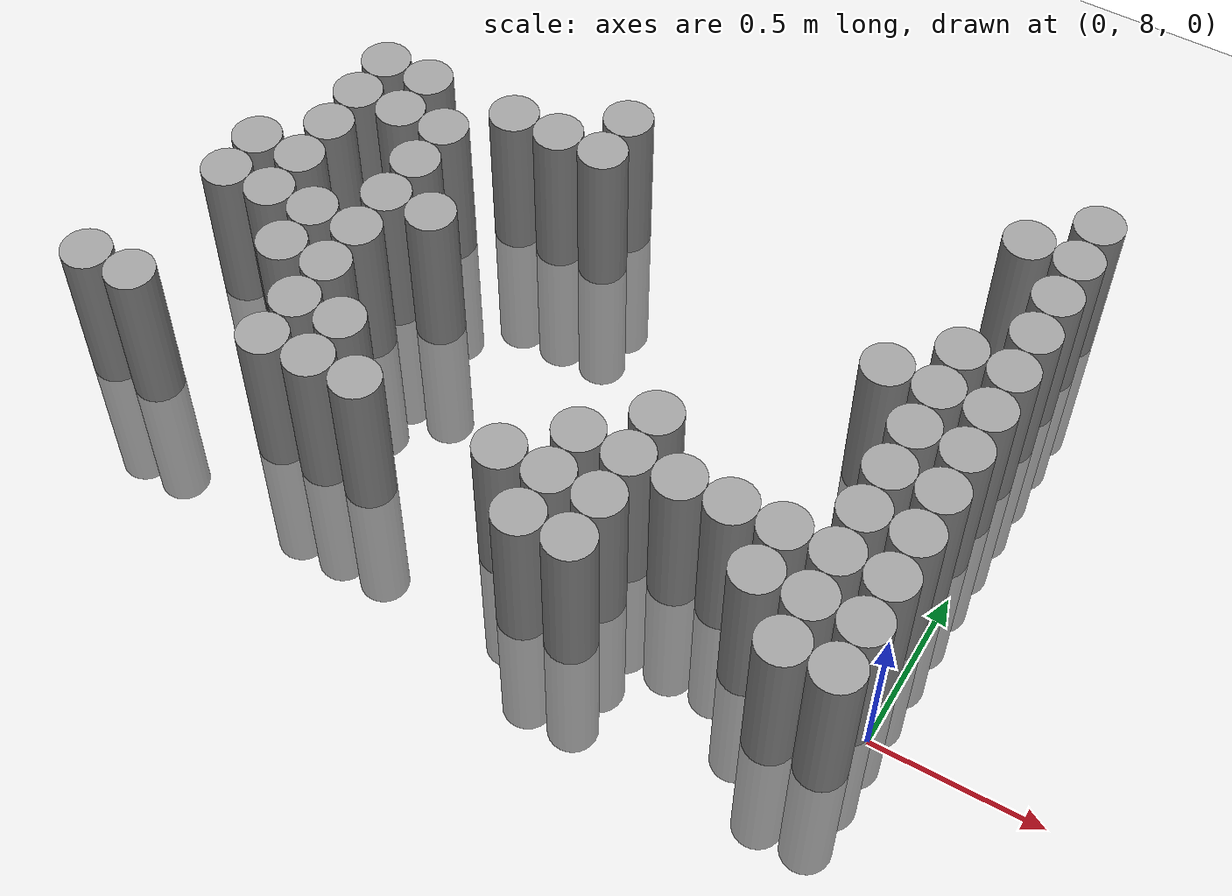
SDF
<sdf version="1.6">
 <world name="default">
  <model name="ground_plane">
   <static>1</static>
   <link name="link">
    <collision name="collision">
     <geometry><plane><normal>0 0 1</normal><size>100 100</size></plane></geometry>
     <surface><friction><ode><mu>100</mu><mu2>50</mu2></ode></friction></surface>
    </collision>
    <visual name="visual">
     <cast_shadows>0</cast_shadows>
     <geometry><plane><normal>0 0 1</normal><size>100 100</size></plane></geometry>
     <material>
      <script><uri>file://media/materials/scripts/gazebo.material</uri><name>Gazebo/Grey</name></script>
     </material>
    </visual>
   </link>
  </model>
  <model name="unit_cylinder_168">
   <pose>-2.475000 8.025000 0.000000 0.000000 0.000000 0.000000</pose>
   <link name="link">
    <inertial>
     <mass>1</mass>
     <inertia><ixx>0.145833</ixx><ixy>0</ixy><ixz>0</ixz><iyy>0.145833</iyy><iyz>0</iyz><izz>0.125</izz></inertia>
    </inertial>
    <collision name="collision">
     <geometry><cylinder><radius>0.075000</radius><length>1</length></cylinder></geometry>
    </collision>
    <visual name="visual">
     <geometry><cylinder><radius>0.075000</radius><length>1</length></cylinder></geometry>
     <material>
      <script><name>Gazebo/Grey</name><uri>file://media/materials/scripts/gazebo.material</uri></script>
     </material>
    </visual>
   </link>
  </model>
  <model name="unit_cylinder_173">
   <pose>-2.325000 8.025000 0.000000 0.000000 0.000000 0.000000</pose>
   <link name="link">
    <inertial>
     <mass>1</mass>
     <inertia><ixx>0.145833</ixx><ixy>0</ixy><ixz>0</ixz><iyy>0.145833</iyy><iyz>0</iyz><izz>0.125</izz></inertia>
    </inertial>
    <collision name="collision">
     <geometry><cylinder><radius>0.075000</radius><length>1</length></cylinder></geometry>
    </collision>
    <visual name="visual">
     <geometry><cylinder><radius>0.075000</radius><length>1</length></cylinder></geometry>
     <material>
      <script><name>Gazebo/Grey</name><uri>file://media/materials/scripts/gazebo.material</uri></script>
     </material>
    </visual>
   </link>
  </model>
  <model name="unit_cylinder_174">
   <pose>-2.325000 8.475000 0.000000 0.000000 0.000000 0.000000</pose>
   <link name="link">
    <inertial>
     <mass>1</mass>
     <inertia><ixx>0.145833</ixx><ixy>0</ixy><ixz>0</ixz><iyy>0.145833</iyy><iyz>0</iyz><izz>0.125</izz></inertia>
    </inertial>
    <collision name="collision">
     <geometry><cylinder><radius>0.075000</radius><length>1</length></cylinder></geometry>
    </collision>
    <visual name="visual">
     <geometry><cylinder><radius>0.075000</radius><length>1</length></cylinder></geometry>
     <material>
      <script><name>Gazebo/Grey</name><uri>file://media/materials/scripts/gazebo.material</uri></script>
     </material>
    </visual>
   </link>
  </model>
  <model name="unit_cylinder_175">
   <pose>-2.325000 8.625000 0.000000 0.000000 0.000000 0.000000</pose>
   <link name="link">
    <inertial>
     <mass>1</mass>
     <inertia><ixx>0.145833</ixx><ixy>0</ixy><ixz>0</ixz><iyy>0.145833</iyy><iyz>0</iyz><izz>0.125</izz></inertia>
    </inertial>
    <collision name="collision">
     <geometry><cylinder><radius>0.075000</radius><length>1</length></cylinder></geometry>
    </collision>
    <visual name="visual">
     <geometry><cylinder><radius>0.075000</radius><length>1</length></cylinder></geometry>
     <material>
      <script><name>Gazebo/Grey</name><uri>file://media/materials/scripts/gazebo.material</uri></script>
     </material>
    </visual>
   </link>
  </model>
  <model name="unit_cylinder_179">
   <pose>-2.175000 8.475000 0.000000 0.000000 0.000000 0.000000</pose>
   <link name="link">
    <inertial>
     <mass>1</mass>
     <inertia><ixx>0.145833</ixx><ixy>0</ixy><ixz>0</ixz><iyy>0.145833</iyy><iyz>0</iyz><izz>0.125</izz></inertia>
    </inertial>
    <collision name="collision">
     <geometry><cylinder><radius>0.075000</radius><length>1</length></cylinder></geometry>
    </collision>
    <visual name="visual">
     <geometry><cylinder><radius>0.075000</radius><length>1</length></cylinder></geometry>
     <material>
      <script><name>Gazebo/Grey</name><uri>file://media/materials/scripts/gazebo.material</uri></script>
     </material>
    </visual>
   </link>
  </model>
  <model name="unit_cylinder_180">
   <pose>-2.175000 8.625000 0.000000 0.000000 0.000000 0.000000</pose>
   <link name="link">
    <inertial>
     <mass>1</mass>
     <inertia><ixx>0.145833</ixx><ixy>0</ixy><ixz>0</ixz><iyy>0.145833</iyy><iyz>0</iyz><izz>0.125</izz></inertia>
    </inertial>
    <collision name="collision">
     <geometry><cylinder><radius>0.075000</radius><length>1</length></cylinder></geometry>
    </collision>
    <visual name="visual">
     <geometry><cylinder><radius>0.075000</radius><length>1</length></cylinder></geometry>
     <material>
      <script><name>Gazebo/Grey</name><uri>file://media/materials/scripts/gazebo.material</uri></script>
     </material>
    </visual>
   </link>
  </model>
  <model name="unit_cylinder_181">
   <pose>-2.175000 8.775000 0.000000 0.000000 0.000000 0.000000</pose>
   <link name="link">
    <inertial>
     <mass>1</mass>
     <inertia><ixx>0.145833</ixx><ixy>0</ixy><ixz>0</ixz><iyy>0.145833</iyy><iyz>0</iyz><izz>0.125</izz></inertia>
    </inertial>
    <collision name="collision">
     <geometry><cylinder><radius>0.075000</radius><length>1</length></cylinder></geometry>
    </collision>
    <visual name="visual">
     <geometry><cylinder><radius>0.075000</radius><length>1</length></cylinder></geometry>
     <material>
      <script><name>Gazebo/Grey</name><uri>file://media/materials/scripts/gazebo.material</uri></script>
     </material>
    </visual>
   </link>
  </model>
  <model name="unit_cylinder_182">
   <pose>-2.175000 8.925000 0.000000 0.000000 0.000000 0.000000</pose>
   <link name="link">
    <inertial>
     <mass>1</mass>
     <inertia><ixx>0.145833</ixx><ixy>0</ixy><ixz>0</ixz><iyy>0.145833</iyy><iyz>0</iyz><izz>0.125</izz></inertia>
    </inertial>
    <collision name="collision">
     <geometry><cylinder><radius>0.075000</radius><length>1</length></cylinder></geometry>
    </collision>
    <visual name="visual">
     <geometry><cylinder><radius>0.075000</radius><length>1</length></cylinder></geometry>
     <material>
      <script><name>Gazebo/Grey</name><uri>file://media/materials/scripts/gazebo.material</uri></script>
     </material>
    </visual>
   </link>
  </model>
  <model name="unit_cylinder_183">
   <pose>-2.175000 9.075000 0.000000 0.000000 0.000000 0.000000</pose>
   <link name="link">
    <inertial>
     <mass>1</mass>
     <inertia><ixx>0.145833</ixx><ixy>0</ixy><ixz>0</ixz><iyy>0.145833</iyy><iyz>0</iyz><izz>0.125</izz></inertia>
    </inertial>
    <collision name="collision">
     <geometry><cylinder><radius>0.075000</radius><length>1</length></cylinder></geometry>
    </collision>
    <visual name="visual">
     <geometry><cylinder><radius>0.075000</radius><length>1</length></cylinder></geometry>
     <material>
      <script><name>Gazebo/Grey</name><uri>file://media/materials/scripts/gazebo.material</uri></script>
     </material>
    </visual>
   </link>
  </model>
  <model name="unit_cylinder_186">
   <pose>-2.025000 8.325000 0.000000 0.000000 0.000000 0.000000</pose>
   <link name="link">
    <inertial>
     <mass>1</mass>
     <inertia><ixx>0.145833</ixx><ixy>0</ixy><ixz>0</ixz><iyy>0.145833</iyy><iyz>0</iyz><izz>0.125</izz></inertia>
    </inertial>
    <collision name="collision">
     <geometry><cylinder><radius>0.075000</radius><length>1</length></cylinder></geometry>
    </collision>
    <visual name="visual">
     <geometry><cylinder><radius>0.075000</radius><length>1</length></cylinder></geometry>
     <material>
      <script><name>Gazebo/Grey</name><uri>file://media/materials/scripts/gazebo.material</uri></script>
     </material>
    </visual>
   </link>
  </model>
  <model name="unit_cylinder_187">
   <pose>-2.025000 8.475000 0.000000 0.000000 0.000000 0.000000</pose>
   <link name="link">
    <inertial>
     <mass>1</mass>
     <inertia><ixx>0.145833</ixx><ixy>0</ixy><ixz>0</ixz><iyy>0.145833</iyy><iyz>0</iyz><izz>0.125</izz></inertia>
    </inertial>
    <collision name="collision">
     <geometry><cylinder><radius>0.075000</radius><length>1</length></cylinder></geometry>
    </collision>
    <visual name="visual">
     <geometry><cylinder><radius>0.075000</radius><length>1</length></cylinder></geometry>
     <material>
      <script><name>Gazebo/Grey</name><uri>file://media/materials/scripts/gazebo.material</uri></script>
     </material>
    </visual>
   </link>
  </model>
  <model name="unit_cylinder_188">
   <pose>-2.025000 8.925000 0.000000 0.000000 0.000000 0.000000</pose>
   <link name="link">
    <inertial>
     <mass>1</mass>
     <inertia><ixx>0.145833</ixx><ixy>0</ixy><ixz>0</ixz><iyy>0.145833</iyy><iyz>0</iyz><izz>0.125</izz></inertia>
    </inertial>
    <collision name="collision">
     <geometry><cylinder><radius>0.075000</radius><length>1</length></cylinder></geometry>
    </collision>
    <visual name="visual">
     <geometry><cylinder><radius>0.075000</radius><length>1</length></cylinder></geometry>
     <material>
      <script><name>Gazebo/Grey</name><uri>file://media/materials/scripts/gazebo.material</uri></script>
     </material>
    </visual>
   </link>
  </model>
  <model name="unit_cylinder_189">
   <pose>-2.025000 9.075000 0.000000 0.000000 0.000000 0.000000</pose>
   <link name="link">
    <inertial>
     <mass>1</mass>
     <inertia><ixx>0.145833</ixx><ixy>0</ixy><ixz>0</ixz><iyy>0.145833</iyy><iyz>0</iyz><izz>0.125</izz></inertia>
    </inertial>
    <collision name="collision">
     <geometry><cylinder><radius>0.075000</radius><length>1</length></cylinder></geometry>
    </collision>
    <visual name="visual">
     <geometry><cylinder><radius>0.075000</radius><length>1</length></cylinder></geometry>
     <material>
      <script><name>Gazebo/Grey</name><uri>file://media/materials/scripts/gazebo.material</uri></script>
     </material>
    </visual>
   </link>
  </model>
  <model name="unit_cylinder_192">
   <pose>-1.875000 8.025000 0.000000 0.000000 0.000000 0.000000</pose>
   <link name="link">
    <inertial>
     <mass>1</mass>
     <inertia><ixx>0.145833</ixx><ixy>0</ixy><ixz>0</ixz><iyy>0.145833</iyy><iyz>0</iyz><izz>0.125</izz></inertia>
    </inertial>
    <collision name="collision">
     <geometry><cylinder><radius>0.075000</radius><length>1</length></cylinder></geometry>
    </collision>
    <visual name="visual">
     <geometry><cylinder><radius>0.075000</radius><length>1</length></cylinder></geometry>
     <material>
      <script><name>Gazebo/Grey</name><uri>file://media/materials/scripts/gazebo.material</uri></script>
     </material>
    </visual>
   </link>
  </model>
  <model name="unit_cylinder_193">
   <pose>-1.875000 8.175000 0.000000 0.000000 0.000000 0.000000</pose>
   <link name="link">
    <inertial>
     <mass>1</mass>
     <inertia><ixx>0.145833</ixx><ixy>0</ixy><ixz>0</ixz><iyy>0.145833</iyy><iyz>0</iyz><izz>0.125</izz></inertia>
    </inertial>
    <collision name="collision">
     <geometry><cylinder><radius>0.075000</radius><length>1</length></cylinder></geometry>
    </collision>
    <visual name="visual">
     <geometry><cylinder><radius>0.075000</radius><length>1</length></cylinder></geometry>
     <material>
      <script><name>Gazebo/Grey</name><uri>file://media/materials/scripts/gazebo.material</uri></script>
     </material>
    </visual>
   </link>
  </model>
  <model name="unit_cylinder_194">
   <pose>-1.875000 8.325000 0.000000 0.000000 0.000000 0.000000</pose>
   <link name="link">
    <inertial>
     <mass>1</mass>
     <inertia><ixx>0.145833</ixx><ixy>0</ixy><ixz>0</ixz><iyy>0.145833</iyy><iyz>0</iyz><izz>0.125</izz></inertia>
    </inertial>
    <collision name="collision">
     <geometry><cylinder><radius>0.075000</radius><length>1</length></cylinder></geometry>
    </collision>
    <visual name="visual">
     <geometry><cylinder><radius>0.075000</radius><length>1</length></cylinder></geometry>
     <material>
      <script><name>Gazebo/Grey</name><uri>file://media/materials/scripts/gazebo.material</uri></script>
     </material>
    </visual>
   </link>
  </model>
  <model name="unit_cylinder_195">
   <pose>-1.875000 8.475000 0.000000 0.000000 0.000000 0.000000</pose>
   <link name="link">
    <inertial>
     <mass>1</mass>
     <inertia><ixx>0.145833</ixx><ixy>0</ixy><ixz>0</ixz><iyy>0.145833</iyy><iyz>0</iyz><izz>0.125</izz></inertia>
    </inertial>
    <collision name="collision">
     <geometry><cylinder><radius>0.075000</radius><length>1</length></cylinder></geometry>
    </collision>
    <visual name="visual">
     <geometry><cylinder><radius>0.075000</radius><length>1</length></cylinder></geometry>
     <material>
      <script><name>Gazebo/Grey</name><uri>file://media/materials/scripts/gazebo.material</uri></script>
     </material>
    </visual>
   </link>
  </model>
  <model name="unit_cylinder_196">
   <pose>-1.875000 8.625000 0.000000 0.000000 0.000000 0.000000</pose>
   <link name="link">
    <inertial>
     <mass>1</mass>
     <inertia><ixx>0.145833</ixx><ixy>0</ixy><ixz>0</ixz><iyy>0.145833</iyy><iyz>0</iyz><izz>0.125</izz></inertia>
    </inertial>
    <collision name="collision">
     <geometry><cylinder><radius>0.075000</radius><length>1</length></cylinder></geometry>
    </collision>
    <visual name="visual">
     <geometry><cylinder><radius>0.075000</radius><length>1</length></cylinder></geometry>
     <material>
      <script><name>Gazebo/Grey</name><uri>file://media/materials/scripts/gazebo.material</uri></script>
     </material>
    </visual>
   </link>
  </model>
  <model name="unit_cylinder_197">
   <pose>-1.875000 8.775000 0.000000 0.000000 0.000000 0.000000</pose>
   <link name="link">
    <inertial>
     <mass>1</mass>
     <inertia><ixx>0.145833</ixx><ixy>0</ixy><ixz>0</ixz><iyy>0.145833</iyy><iyz>0</iyz><izz>0.125</izz></inertia>
    </inertial>
    <collision name="collision">
     <geometry><cylinder><radius>0.075000</radius><length>1</length></cylinder></geometry>
    </collision>
    <visual name="visual">
     <geometry><cylinder><radius>0.075000</radius><length>1</length></cylinder></geometry>
     <material>
      <script><name>Gazebo/Grey</name><uri>file://media/materials/scripts/gazebo.material</uri></script>
     </material>
    </visual>
   </link>
  </model>
  <model name="unit_cylinder_198">
   <pose>-1.875000 8.925000 0.000000 0.000000 0.000000 0.000000</pose>
   <link name="link">
    <inertial>
     <mass>1</mass>
     <inertia><ixx>0.145833</ixx><ixy>0</ixy><ixz>0</ixz><iyy>0.145833</iyy><iyz>0</iyz><izz>0.125</izz></inertia>
    </inertial>
    <collision name="collision">
     <geometry><cylinder><radius>0.075000</radius><length>1</length></cylinder></geometry>
    </collision>
    <visual name="visual">
     <geometry><cylinder><radius>0.075000</radius><length>1</length></cylinder></geometry>
     <material>
      <script><name>Gazebo/Grey</name><uri>file://media/materials/scripts/gazebo.material</uri></script>
     </material>
    </visual>
   </link>
  </model>
  <model name="unit_cylinder_202">
   <pose>-1.725000 8.025000 0.000000 0.000000 0.000000 0.000000</pose>
   <link name="link">
    <inertial>
     <mass>1</mass>
     <inertia><ixx>0.145833</ixx><ixy>0</ixy><ixz>0</ixz><iyy>0.145833</iyy><iyz>0</iyz><izz>0.125</izz></inertia>
    </inertial>
    <collision name="collision">
     <geometry><cylinder><radius>0.075000</radius><length>1</length></cylinder></geometry>
    </collision>
    <visual name="visual">
     <geometry><cylinder><radius>0.075000</radius><length>1</length></cylinder></geometry>
     <material>
      <script><name>Gazebo/Grey</name><uri>file://media/materials/scripts/gazebo.material</uri></script>
     </material>
    </visual>
   </link>
  </model>
  <model name="unit_cylinder_203">
   <pose>-1.725000 8.175000 0.000000 0.000000 0.000000 0.000000</pose>
   <link name="link">
    <inertial>
     <mass>1</mass>
     <inertia><ixx>0.145833</ixx><ixy>0</ixy><ixz>0</ixz><iyy>0.145833</iyy><iyz>0</iyz><izz>0.125</izz></inertia>
    </inertial>
    <collision name="collision">
     <geometry><cylinder><radius>0.075000</radius><length>1</length></cylinder></geometry>
    </collision>
    <visual name="visual">
     <geometry><cylinder><radius>0.075000</radius><length>1</length></cylinder></geometry>
     <material>
      <script><name>Gazebo/Grey</name><uri>file://media/materials/scripts/gazebo.material</uri></script>
     </material>
    </visual>
   </link>
  </model>
  <model name="unit_cylinder_204">
   <pose>-1.725000 8.625000 0.000000 0.000000 0.000000 0.000000</pose>
   <link name="link">
    <inertial>
     <mass>1</mass>
     <inertia><ixx>0.145833</ixx><ixy>0</ixy><ixz>0</ixz><iyy>0.145833</iyy><iyz>0</iyz><izz>0.125</izz></inertia>
    </inertial>
    <collision name="collision">
     <geometry><cylinder><radius>0.075000</radius><length>1</length></cylinder></geometry>
    </collision>
    <visual name="visual">
     <geometry><cylinder><radius>0.075000</radius><length>1</length></cylinder></geometry>
     <material>
      <script><name>Gazebo/Grey</name><uri>file://media/materials/scripts/gazebo.material</uri></script>
     </material>
    </visual>
   </link>
  </model>
  <model name="unit_cylinder_205">
   <pose>-1.725000 9.075000 0.000000 0.000000 0.000000 0.000000</pose>
   <link name="link">
    <inertial>
     <mass>1</mass>
     <inertia><ixx>0.145833</ixx><ixy>0</ixy><ixz>0</ixz><iyy>0.145833</iyy><iyz>0</iyz><izz>0.125</izz></inertia>
    </inertial>
    <collision name="collision">
     <geometry><cylinder><radius>0.075000</radius><length>1</length></cylinder></geometry>
    </collision>
    <visual name="visual">
     <geometry><cylinder><radius>0.075000</radius><length>1</length></cylinder></geometry>
     <material>
      <script><name>Gazebo/Grey</name><uri>file://media/materials/scripts/gazebo.material</uri></script>
     </material>
    </visual>
   </link>
  </model>
  <model name="unit_cylinder_209">
   <pose>-1.575000 8.025000 0.000000 0.000000 0.000000 0.000000</pose>
   <link name="link">
    <inertial>
     <mass>1</mass>
     <inertia><ixx>0.145833</ixx><ixy>0</ixy><ixz>0</ixz><iyy>0.145833</iyy><iyz>0</iyz><izz>0.125</izz></inertia>
    </inertial>
    <collision name="collision">
     <geometry><cylinder><radius>0.075000</radius><length>1</length></cylinder></geometry>
    </collision>
    <visual name="visual">
     <geometry><cylinder><radius>0.075000</radius><length>1</length></cylinder></geometry>
     <material>
      <script><name>Gazebo/Grey</name><uri>file://media/materials/scripts/gazebo.material</uri></script>
     </material>
    </visual>
   </link>
  </model>
  <model name="unit_cylinder_210">
   <pose>-1.575000 9.075000 0.000000 0.000000 0.000000 0.000000</pose>
   <link name="link">
    <inertial>
     <mass>1</mass>
     <inertia><ixx>0.145833</ixx><ixy>0</ixy><ixz>0</ixz><iyy>0.145833</iyy><iyz>0</iyz><izz>0.125</izz></inertia>
    </inertial>
    <collision name="collision">
     <geometry><cylinder><radius>0.075000</radius><length>1</length></cylinder></geometry>
    </collision>
    <visual name="visual">
     <geometry><cylinder><radius>0.075000</radius><length>1</length></cylinder></geometry>
     <material>
      <script><name>Gazebo/Grey</name><uri>file://media/materials/scripts/gazebo.material</uri></script>
     </material>
    </visual>
   </link>
  </model>
  <model name="unit_cylinder_216">
   <pose>-1.425000 9.075000 0.000000 0.000000 0.000000 0.000000</pose>
   <link name="link">
    <inertial>
     <mass>1</mass>
     <inertia><ixx>0.145833</ixx><ixy>0</ixy><ixz>0</ixz><iyy>0.145833</iyy><iyz>0</iyz><izz>0.125</izz></inertia>
    </inertial>
    <collision name="collision">
     <geometry><cylinder><radius>0.075000</radius><length>1</length></cylinder></geometry>
    </collision>
    <visual name="visual">
     <geometry><cylinder><radius>0.075000</radius><length>1</length></cylinder></geometry>
     <material>
      <script><name>Gazebo/Grey</name><uri>file://media/materials/scripts/gazebo.material</uri></script>
     </material>
    </visual>
   </link>
  </model>
  <model name="unit_cylinder_217">
   <pose>-1.425000 9.225000 0.000000 0.000000 0.000000 0.000000</pose>
   <link name="link">
    <inertial>
     <mass>1</mass>
     <inertia><ixx>0.145833</ixx><ixy>0</ixy><ixz>0</ixz><iyy>0.145833</iyy><iyz>0</iyz><izz>0.125</izz></inertia>
    </inertial>
    <collision name="collision">
     <geometry><cylinder><radius>0.075000</radius><length>1</length></cylinder></geometry>
    </collision>
    <visual name="visual">
     <geometry><cylinder><radius>0.075000</radius><length>1</length></cylinder></geometry>
     <material>
      <script><name>Gazebo/Grey</name><uri>file://media/materials/scripts/gazebo.material</uri></script>
     </material>
    </visual>
   </link>
  </model>
  <model name="unit_cylinder_227">
   <pose>-1.125000 8.025000 0.000000 0.000000 0.000000 0.000000</pose>
   <link name="link">
    <inertial>
     <mass>1</mass>
     <inertia><ixx>0.145833</ixx><ixy>0</ixy><ixz>0</ixz><iyy>0.145833</iyy><iyz>0</iyz><izz>0.125</izz></inertia>
    </inertial>
    <collision name="collision">
     <geometry><cylinder><radius>0.075000</radius><length>1</length></cylinder></geometry>
    </collision>
    <visual name="visual">
     <geometry><cylinder><radius>0.075000</radius><length>1</length></cylinder></geometry>
     <material>
      <script><name>Gazebo/Grey</name><uri>file://media/materials/scripts/gazebo.material</uri></script>
     </material>
    </visual>
   </link>
  </model>
  <model name="unit_cylinder_231">
   <pose>-0.975000 7.875000 0.000000 0.000000 0.000000 0.000000</pose>
   <link name="link">
    <inertial>
     <mass>1</mass>
     <inertia><ixx>0.145833</ixx><ixy>0</ixy><ixz>0</ixz><iyy>0.145833</iyy><iyz>0</iyz><izz>0.125</izz></inertia>
    </inertial>
    <collision name="collision">
     <geometry><cylinder><radius>0.075000</radius><length>1</length></cylinder></geometry>
    </collision>
    <visual name="visual">
     <geometry><cylinder><radius>0.075000</radius><length>1</length></cylinder></geometry>
     <material>
      <script><name>Gazebo/Grey</name><uri>file://media/materials/scripts/gazebo.material</uri></script>
     </material>
    </visual>
   </link>
  </model>
  <model name="unit_cylinder_232">
   <pose>-0.975000 8.025000 0.000000 0.000000 0.000000 0.000000</pose>
   <link name="link">
    <inertial>
     <mass>1</mass>
     <inertia><ixx>0.145833</ixx><ixy>0</ixy><ixz>0</ixz><iyy>0.145833</iyy><iyz>0</iyz><izz>0.125</izz></inertia>
    </inertial>
    <collision name="collision">
     <geometry><cylinder><radius>0.075000</radius><length>1</length></cylinder></geometry>
    </collision>
    <visual name="visual">
     <geometry><cylinder><radius>0.075000</radius><length>1</length></cylinder></geometry>
     <material>
      <script><name>Gazebo/Grey</name><uri>file://media/materials/scripts/gazebo.material</uri></script>
     </material>
    </visual>
   </link>
  </model>
  <model name="unit_cylinder_233">
   <pose>-0.975000 8.175000 0.000000 0.000000 0.000000 0.000000</pose>
   <link name="link">
    <inertial>
     <mass>1</mass>
     <inertia><ixx>0.145833</ixx><ixy>0</ixy><ixz>0</ixz><iyy>0.145833</iyy><iyz>0</iyz><izz>0.125</izz></inertia>
    </inertial>
    <collision name="collision">
     <geometry><cylinder><radius>0.075000</radius><length>1</length></cylinder></geometry>
    </collision>
    <visual name="visual">
     <geometry><cylinder><radius>0.075000</radius><length>1</length></cylinder></geometry>
     <material>
      <script><name>Gazebo/Grey</name><uri>file://media/materials/scripts/gazebo.material</uri></script>
     </material>
    </visual>
   </link>
  </model>
  <model name="unit_cylinder_238">
   <pose>-0.825000 7.875000 0.000000 0.000000 0.000000 0.000000</pose>
   <link name="link">
    <inertial>
     <mass>1</mass>
     <inertia><ixx>0.145833</ixx><ixy>0</ixy><ixz>0</ixz><iyy>0.145833</iyy><iyz>0</iyz><izz>0.125</izz></inertia>
    </inertial>
    <collision name="collision">
     <geometry><cylinder><radius>0.075000</radius><length>1</length></cylinder></geometry>
    </collision>
    <visual name="visual">
     <geometry><cylinder><radius>0.075000</radius><length>1</length></cylinder></geometry>
     <material>
      <script><name>Gazebo/Grey</name><uri>file://media/materials/scripts/gazebo.material</uri></script>
     </material>
    </visual>
   </link>
  </model>
  <model name="unit_cylinder_239">
   <pose>-0.825000 8.025000 0.000000 0.000000 0.000000 0.000000</pose>
   <link name="link">
    <inertial>
     <mass>1</mass>
     <inertia><ixx>0.145833</ixx><ixy>0</ixy><ixz>0</ixz><iyy>0.145833</iyy><iyz>0</iyz><izz>0.125</izz></inertia>
    </inertial>
    <collision name="collision">
     <geometry><cylinder><radius>0.075000</radius><length>1</length></cylinder></geometry>
    </collision>
    <visual name="visual">
     <geometry><cylinder><radius>0.075000</radius><length>1</length></cylinder></geometry>
     <material>
      <script><name>Gazebo/Grey</name><uri>file://media/materials/scripts/gazebo.material</uri></script>
     </material>
    </visual>
   </link>
  </model>
  <model name="unit_cylinder_240">
   <pose>-0.825000 8.175000 0.000000 0.000000 0.000000 0.000000</pose>
   <link name="link">
    <inertial>
     <mass>1</mass>
     <inertia><ixx>0.145833</ixx><ixy>0</ixy><ixz>0</ixz><iyy>0.145833</iyy><iyz>0</iyz><izz>0.125</izz></inertia>
    </inertial>
    <collision name="collision">
     <geometry><cylinder><radius>0.075000</radius><length>1</length></cylinder></geometry>
    </collision>
    <visual name="visual">
     <geometry><cylinder><radius>0.075000</radius><length>1</length></cylinder></geometry>
     <material>
      <script><name>Gazebo/Grey</name><uri>file://media/materials/scripts/gazebo.material</uri></script>
     </material>
    </visual>
   </link>
  </model>
  <model name="unit_cylinder_241">
   <pose>-0.825000 8.325000 0.000000 0.000000 0.000000 0.000000</pose>
   <link name="link">
    <inertial>
     <mass>1</mass>
     <inertia><ixx>0.145833</ixx><ixy>0</ixy><ixz>0</ixz><iyy>0.145833</iyy><iyz>0</iyz><izz>0.125</izz></inertia>
    </inertial>
    <collision name="collision">
     <geometry><cylinder><radius>0.075000</radius><length>1</length></cylinder></geometry>
    </collision>
    <visual name="visual">
     <geometry><cylinder><radius>0.075000</radius><length>1</length></cylinder></geometry>
     <material>
      <script><name>Gazebo/Grey</name><uri>file://media/materials/scripts/gazebo.material</uri></script>
     </material>
    </visual>
   </link>
  </model>
  <model name="unit_cylinder_246">
   <pose>-0.675000 8.175000 0.000000 0.000000 0.000000 0.000000</pose>
   <link name="link">
    <inertial>
     <mass>1</mass>
     <inertia><ixx>0.145833</ixx><ixy>0</ixy><ixz>0</ixz><iyy>0.145833</iyy><iyz>0</iyz><izz>0.125</izz></inertia>
    </inertial>
    <collision name="collision">
     <geometry><cylinder><radius>0.075000</radius><length>1</length></cylinder></geometry>
    </collision>
    <visual name="visual">
     <geometry><cylinder><radius>0.075000</radius><length>1</length></cylinder></geometry>
     <material>
      <script><name>Gazebo/Grey</name><uri>file://media/materials/scripts/gazebo.material</uri></script>
     </material>
    </visual>
   </link>
  </model>
  <model name="unit_cylinder_252">
   <pose>-0.525000 8.175000 0.000000 0.000000 0.000000 0.000000</pose>
   <link name="link">
    <inertial>
     <mass>1</mass>
     <inertia><ixx>0.145833</ixx><ixy>0</ixy><ixz>0</ixz><iyy>0.145833</iyy><iyz>0</iyz><izz>0.125</izz></inertia>
    </inertial>
    <collision name="collision">
     <geometry><cylinder><radius>0.075000</radius><length>1</length></cylinder></geometry>
    </collision>
    <visual name="visual">
     <geometry><cylinder><radius>0.075000</radius><length>1</length></cylinder></geometry>
     <material>
      <script><name>Gazebo/Grey</name><uri>file://media/materials/scripts/gazebo.material</uri></script>
     </material>
    </visual>
   </link>
  </model>
  <model name="unit_cylinder_258">
   <pose>-0.375000 8.025000 0.000000 0.000000 0.000000 0.000000</pose>
   <link name="link">
    <inertial>
     <mass>1</mass>
     <inertia><ixx>0.145833</ixx><ixy>0</ixy><ixz>0</ixz><iyy>0.145833</iyy><iyz>0</iyz><izz>0.125</izz></inertia>
    </inertial>
    <collision name="collision">
     <geometry><cylinder><radius>0.075000</radius><length>1</length></cylinder></geometry>
    </collision>
    <visual name="visual">
     <geometry><cylinder><radius>0.075000</radius><length>1</length></cylinder></geometry>
     <material>
      <script><name>Gazebo/Grey</name><uri>file://media/materials/scripts/gazebo.material</uri></script>
     </material>
    </visual>
   </link>
  </model>
  <model name="unit_cylinder_259">
   <pose>-0.375000 8.175000 0.000000 0.000000 0.000000 0.000000</pose>
   <link name="link">
    <inertial>
     <mass>1</mass>
     <inertia><ixx>0.145833</ixx><ixy>0</ixy><ixz>0</ixz><iyy>0.145833</iyy><iyz>0</iyz><izz>0.125</izz></inertia>
    </inertial>
    <collision name="collision">
     <geometry><cylinder><radius>0.075000</radius><length>1</length></cylinder></geometry>
    </collision>
    <visual name="visual">
     <geometry><cylinder><radius>0.075000</radius><length>1</length></cylinder></geometry>
     <material>
      <script><name>Gazebo/Grey</name><uri>file://media/materials/scripts/gazebo.material</uri></script>
     </material>
    </visual>
   </link>
  </model>
  <model name="unit_cylinder_260">
   <pose>-0.375000 8.775000 0.000000 0.000000 0.000000 0.000000</pose>
   <link name="link">
    <inertial>
     <mass>1</mass>
     <inertia><ixx>0.145833</ixx><ixy>0</ixy><ixz>0</ixz><iyy>0.145833</iyy><iyz>0</iyz><izz>0.125</izz></inertia>
    </inertial>
    <collision name="collision">
     <geometry><cylinder><radius>0.075000</radius><length>1</length></cylinder></geometry>
    </collision>
    <visual name="visual">
     <geometry><cylinder><radius>0.075000</radius><length>1</length></cylinder></geometry>
     <material>
      <script><name>Gazebo/Grey</name><uri>file://media/materials/scripts/gazebo.material</uri></script>
     </material>
    </visual>
   </link>
  </model>
  <model name="unit_cylinder_270">
   <pose>-0.225000 7.875000 0.000000 0.000000 0.000000 0.000000</pose>
   <link name="link">
    <inertial>
     <mass>1</mass>
     <inertia><ixx>0.145833</ixx><ixy>0</ixy><ixz>0</ixz><iyy>0.145833</iyy><iyz>0</iyz><izz>0.125</izz></inertia>
    </inertial>
    <collision name="collision">
     <geometry><cylinder><radius>0.075000</radius><length>1</length></cylinder></geometry>
    </collision>
    <visual name="visual">
     <geometry><cylinder><radius>0.075000</radius><length>1</length></cylinder></geometry>
     <material>
      <script><name>Gazebo/Grey</name><uri>file://media/materials/scripts/gazebo.material</uri></script>
     </material>
    </visual>
   </link>
  </model>
  <model name="unit_cylinder_271">
   <pose>-0.225000 8.025000 0.000000 0.000000 0.000000 0.000000</pose>
   <link name="link">
    <inertial>
     <mass>1</mass>
     <inertia><ixx>0.145833</ixx><ixy>0</ixy><ixz>0</ixz><iyy>0.145833</iyy><iyz>0</iyz><izz>0.125</izz></inertia>
    </inertial>
    <collision name="collision">
     <geometry><cylinder><radius>0.075000</radius><length>1</length></cylinder></geometry>
    </collision>
    <visual name="visual">
     <geometry><cylinder><radius>0.075000</radius><length>1</length></cylinder></geometry>
     <material>
      <script><name>Gazebo/Grey</name><uri>file://media/materials/scripts/gazebo.material</uri></script>
     </material>
    </visual>
   </link>
  </model>
  <model name="unit_cylinder_272">
   <pose>-0.225000 8.175000 0.000000 0.000000 0.000000 0.000000</pose>
   <link name="link">
    <inertial>
     <mass>1</mass>
     <inertia><ixx>0.145833</ixx><ixy>0</ixy><ixz>0</ixz><iyy>0.145833</iyy><iyz>0</iyz><izz>0.125</izz></inertia>
    </inertial>
    <collision name="collision">
     <geometry><cylinder><radius>0.075000</radius><length>1</length></cylinder></geometry>
    </collision>
    <visual name="visual">
     <geometry><cylinder><radius>0.075000</radius><length>1</length></cylinder></geometry>
     <material>
      <script><name>Gazebo/Grey</name><uri>file://media/materials/scripts/gazebo.material</uri></script>
     </material>
    </visual>
   </link>
  </model>
  <model name="unit_cylinder_273">
   <pose>-0.225000 8.325000 0.000000 0.000000 0.000000 0.000000</pose>
   <link name="link">
    <inertial>
     <mass>1</mass>
     <inertia><ixx>0.145833</ixx><ixy>0</ixy><ixz>0</ixz><iyy>0.145833</iyy><iyz>0</iyz><izz>0.125</izz></inertia>
    </inertial>
    <collision name="collision">
     <geometry><cylinder><radius>0.075000</radius><length>1</length></cylinder></geometry>
    </collision>
    <visual name="visual">
     <geometry><cylinder><radius>0.075000</radius><length>1</length></cylinder></geometry>
     <material>
      <script><name>Gazebo/Grey</name><uri>file://media/materials/scripts/gazebo.material</uri></script>
     </material>
    </visual>
   </link>
  </model>
  <model name="unit_cylinder_274">
   <pose>-0.225000 8.475000 0.000000 0.000000 0.000000 0.000000</pose>
   <link name="link">
    <inertial>
     <mass>1</mass>
     <inertia><ixx>0.145833</ixx><ixy>0</ixy><ixz>0</ixz><iyy>0.145833</iyy><iyz>0</iyz><izz>0.125</izz></inertia>
    </inertial>
    <collision name="collision">
     <geometry><cylinder><radius>0.075000</radius><length>1</length></cylinder></geometry>
    </collision>
    <visual name="visual">
     <geometry><cylinder><radius>0.075000</radius><length>1</length></cylinder></geometry>
     <material>
      <script><name>Gazebo/Grey</name><uri>file://media/materials/scripts/gazebo.material</uri></script>
     </material>
    </visual>
   </link>
  </model>
  <model name="unit_cylinder_275">
   <pose>-0.225000 8.625000 0.000000 0.000000 0.000000 0.000000</pose>
   <link name="link">
    <inertial>
     <mass>1</mass>
     <inertia><ixx>0.145833</ixx><ixy>0</ixy><ixz>0</ixz><iyy>0.145833</iyy><iyz>0</iyz><izz>0.125</izz></inertia>
    </inertial>
    <collision name="collision">
     <geometry><cylinder><radius>0.075000</radius><length>1</length></cylinder></geometry>
    </collision>
    <visual name="visual">
     <geometry><cylinder><radius>0.075000</radius><length>1</length></cylinder></geometry>
     <material>
      <script><name>Gazebo/Grey</name><uri>file://media/materials/scripts/gazebo.material</uri></script>
     </material>
    </visual>
   </link>
  </model>
  <model name="unit_cylinder_276">
   <pose>-0.225000 8.775000 0.000000 0.000000 0.000000 0.000000</pose>
   <link name="link">
    <inertial>
     <mass>1</mass>
     <inertia><ixx>0.145833</ixx><ixy>0</ixy><ixz>0</ixz><iyy>0.145833</iyy><iyz>0</iyz><izz>0.125</izz></inertia>
    </inertial>
    <collision name="collision">
     <geometry><cylinder><radius>0.075000</radius><length>1</length></cylinder></geometry>
    </collision>
    <visual name="visual">
     <geometry><cylinder><radius>0.075000</radius><length>1</length></cylinder></geometry>
     <material>
      <script><name>Gazebo/Grey</name><uri>file://media/materials/scripts/gazebo.material</uri></script>
     </material>
    </visual>
   </link>
  </model>
  <model name="unit_cylinder_277">
   <pose>-0.225000 8.925000 0.000000 0.000000 0.000000 0.000000</pose>
   <link name="link">
    <inertial>
     <mass>1</mass>
     <inertia><ixx>0.145833</ixx><ixy>0</ixy><ixz>0</ixz><iyy>0.145833</iyy><iyz>0</iyz><izz>0.125</izz></inertia>
    </inertial>
    <collision name="collision">
     <geometry><cylinder><radius>0.075000</radius><length>1</length></cylinder></geometry>
    </collision>
    <visual name="visual">
     <geometry><cylinder><radius>0.075000</radius><length>1</length></cylinder></geometry>
     <material>
      <script><name>Gazebo/Grey</name><uri>file://media/materials/scripts/gazebo.material</uri></script>
     </material>
    </visual>
   </link>
  </model>
  <model name="unit_cylinder_278">
   <pose>-0.225000 9.375000 0.000000 0.000000 0.000000 0.000000</pose>
   <link name="link">
    <inertial>
     <mass>1</mass>
     <inertia><ixx>0.145833</ixx><ixy>0</ixy><ixz>0</ixz><iyy>0.145833</iyy><iyz>0</iyz><izz>0.125</izz></inertia>
    </inertial>
    <collision name="collision">
     <geometry><cylinder><radius>0.075000</radius><length>1</length></cylinder></geometry>
    </collision>
    <visual name="visual">
     <geometry><cylinder><radius>0.075000</radius><length>1</length></cylinder></geometry>
     <material>
      <script><name>Gazebo/Grey</name><uri>file://media/materials/scripts/gazebo.material</uri></script>
     </material>
    </visual>
   </link>
  </model>
  <model name="unit_cylinder_297">
   <pose>-0.075000 7.875000 0.000000 0.000000 0.000000 0.000000</pose>
   <link name="link">
    <inertial>
     <mass>1</mass>
     <inertia><ixx>0.145833</ixx><ixy>0</ixy><ixz>0</ixz><iyy>0.145833</iyy><iyz>0</iyz><izz>0.125</izz></inertia>
    </inertial>
    <collision name="collision">
     <geometry><cylinder><radius>0.075000</radius><length>1</length></cylinder></geometry>
    </collision>
    <visual name="visual">
     <geometry><cylinder><radius>0.075000</radius><length>1</length></cylinder></geometry>
     <material>
      <script><name>Gazebo/Grey</name><uri>file://media/materials/scripts/gazebo.material</uri></script>
     </material>
    </visual>
   </link>
  </model>
  <model name="unit_cylinder_298">
   <pose>-0.075000 8.025000 0.000000 0.000000 0.000000 0.000000</pose>
   <link name="link">
    <inertial>
     <mass>1</mass>
     <inertia><ixx>0.145833</ixx><ixy>0</ixy><ixz>0</ixz><iyy>0.145833</iyy><iyz>0</iyz><izz>0.125</izz></inertia>
    </inertial>
    <collision name="collision">
     <geometry><cylinder><radius>0.075000</radius><length>1</length></cylinder></geometry>
    </collision>
    <visual name="visual">
     <geometry><cylinder><radius>0.075000</radius><length>1</length></cylinder></geometry>
     <material>
      <script><name>Gazebo/Grey</name><uri>file://media/materials/scripts/gazebo.material</uri></script>
     </material>
    </visual>
   </link>
  </model>
  <model name="unit_cylinder_299">
   <pose>-0.075000 8.175000 0.000000 0.000000 0.000000 0.000000</pose>
   <link name="link">
    <inertial>
     <mass>1</mass>
     <inertia><ixx>0.145833</ixx><ixy>0</ixy><ixz>0</ixz><iyy>0.145833</iyy><iyz>0</iyz><izz>0.125</izz></inertia>
    </inertial>
    <collision name="collision">
     <geometry><cylinder><radius>0.075000</radius><length>1</length></cylinder></geometry>
    </collision>
    <visual name="visual">
     <geometry><cylinder><radius>0.075000</radius><length>1</length></cylinder></geometry>
     <material>
      <script><name>Gazebo/Grey</name><uri>file://media/materials/scripts/gazebo.material</uri></script>
     </material>
    </visual>
   </link>
  </model>
  <model name="unit_cylinder_300">
   <pose>-0.075000 8.325000 0.000000 0.000000 0.000000 0.000000</pose>
   <link name="link">
    <inertial>
     <mass>1</mass>
     <inertia><ixx>0.145833</ixx><ixy>0</ixy><ixz>0</ixz><iyy>0.145833</iyy><iyz>0</iyz><izz>0.125</izz></inertia>
    </inertial>
    <collision name="collision">
     <geometry><cylinder><radius>0.075000</radius><length>1</length></cylinder></geometry>
    </collision>
    <visual name="visual">
     <geometry><cylinder><radius>0.075000</radius><length>1</length></cylinder></geometry>
     <material>
      <script><name>Gazebo/Grey</name><uri>file://media/materials/scripts/gazebo.material</uri></script>
     </material>
    </visual>
   </link>
  </model>
  <model name="unit_cylinder_301">
   <pose>-0.075000 8.475000 0.000000 0.000000 0.000000 0.000000</pose>
   <link name="link">
    <inertial>
     <mass>1</mass>
     <inertia><ixx>0.145833</ixx><ixy>0</ixy><ixz>0</ixz><iyy>0.145833</iyy><iyz>0</iyz><izz>0.125</izz></inertia>
    </inertial>
    <collision name="collision">
     <geometry><cylinder><radius>0.075000</radius><length>1</length></cylinder></geometry>
    </collision>
    <visual name="visual">
     <geometry><cylinder><radius>0.075000</radius><length>1</length></cylinder></geometry>
     <material>
      <script><name>Gazebo/Grey</name><uri>file://media/materials/scripts/gazebo.material</uri></script>
     </material>
    </visual>
   </link>
  </model>
  <model name="unit_cylinder_302">
   <pose>-0.075000 8.625000 0.000000 0.000000 0.000000 0.000000</pose>
   <link name="link">
    <inertial>
     <mass>1</mass>
     <inertia><ixx>0.145833</ixx><ixy>0</ixy><ixz>0</ixz><iyy>0.145833</iyy><iyz>0</iyz><izz>0.125</izz></inertia>
    </inertial>
    <collision name="collision">
     <geometry><cylinder><radius>0.075000</radius><length>1</length></cylinder></geometry>
    </collision>
    <visual name="visual">
     <geometry><cylinder><radius>0.075000</radius><length>1</length></cylinder></geometry>
     <material>
      <script><name>Gazebo/Grey</name><uri>file://media/materials/scripts/gazebo.material</uri></script>
     </material>
    </visual>
   </link>
  </model>
  <model name="unit_cylinder_303">
   <pose>-0.075000 8.775000 0.000000 0.000000 0.000000 0.000000</pose>
   <link name="link">
    <inertial>
     <mass>1</mass>
     <inertia><ixx>0.145833</ixx><ixy>0</ixy><ixz>0</ixz><iyy>0.145833</iyy><iyz>0</iyz><izz>0.125</izz></inertia>
    </inertial>
    <collision name="collision">
     <geometry><cylinder><radius>0.075000</radius><length>1</length></cylinder></geometry>
    </collision>
    <visual name="visual">
     <geometry><cylinder><radius>0.075000</radius><length>1</length></cylinder></geometry>
     <material>
      <script><name>Gazebo/Grey</name><uri>file://media/materials/scripts/gazebo.material</uri></script>
     </material>
    </visual>
   </link>
  </model>
  <model name="unit_cylinder_304">
   <pose>-0.075000 8.925000 0.000000 0.000000 0.000000 0.000000</pose>
   <link name="link">
    <inertial>
     <mass>1</mass>
     <inertia><ixx>0.145833</ixx><ixy>0</ixy><ixz>0</ixz><iyy>0.145833</iyy><iyz>0</iyz><izz>0.125</izz></inertia>
    </inertial>
    <collision name="collision">
     <geometry><cylinder><radius>0.075000</radius><length>1</length></cylinder></geometry>
    </collision>
    <visual name="visual">
     <geometry><cylinder><radius>0.075000</radius><length>1</length></cylinder></geometry>
     <material>
      <script><name>Gazebo/Grey</name><uri>file://media/materials/scripts/gazebo.material</uri></script>
     </material>
    </visual>
   </link>
  </model>
  <model name="unit_cylinder_305">
   <pose>-0.075000 9.075000 0.000000 0.000000 0.000000 0.000000</pose>
   <link name="link">
    <inertial>
     <mass>1</mass>
     <inertia><ixx>0.145833</ixx><ixy>0</ixy><ixz>0</ixz><iyy>0.145833</iyy><iyz>0</iyz><izz>0.125</izz></inertia>
    </inertial>
    <collision name="collision">
     <geometry><cylinder><radius>0.075000</radius><length>1</length></cylinder></geometry>
    </collision>
    <visual name="visual">
     <geometry><cylinder><radius>0.075000</radius><length>1</length></cylinder></geometry>
     <material>
      <script><name>Gazebo/Grey</name><uri>file://media/materials/scripts/gazebo.material</uri></script>
     </material>
    </visual>
   </link>
  </model>
  <model name="unit_cylinder_306">
   <pose>-0.075000 9.225000 0.000000 0.000000 0.000000 0.000000</pose>
   <link name="link">
    <inertial>
     <mass>1</mass>
     <inertia><ixx>0.145833</ixx><ixy>0</ixy><ixz>0</ixz><iyy>0.145833</iyy><iyz>0</iyz><izz>0.125</izz></inertia>
    </inertial>
    <collision name="collision">
     <geometry><cylinder><radius>0.075000</radius><length>1</length></cylinder></geometry>
    </collision>
    <visual name="visual">
     <geometry><cylinder><radius>0.075000</radius><length>1</length></cylinder></geometry>
     <material>
      <script><name>Gazebo/Grey</name><uri>file://media/materials/scripts/gazebo.material</uri></script>
     </material>
    </visual>
   </link>
  </model>
  <model name="unit_cylinder_307">
   <pose>-0.075000 9.375000 0.000000 0.000000 0.000000 0.000000</pose>
   <link name="link">
    <inertial>
     <mass>1</mass>
     <inertia><ixx>0.145833</ixx><ixy>0</ixy><ixz>0</ixz><iyy>0.145833</iyy><iyz>0</iyz><izz>0.125</izz></inertia>
    </inertial>
    <collision name="collision">
     <geometry><cylinder><radius>0.075000</radius><length>1</length></cylinder></geometry>
    </collision>
    <visual name="visual">
     <geometry><cylinder><radius>0.075000</radius><length>1</length></cylinder></geometry>
     <material>
      <script><name>Gazebo/Grey</name><uri>file://media/materials/scripts/gazebo.material</uri></script>
     </material>
    </visual>
   </link>
  </model>
  <model name="unit_cylinder_308">
   <pose>-0.075000 9.525000 0.000000 0.000000 0.000000 0.000000</pose>
   <link name="link">
    <inertial>
     <mass>1</mass>
     <inertia><ixx>0.145833</ixx><ixy>0</ixy><ixz>0</ixz><iyy>0.145833</iyy><iyz>0</iyz><izz>0.125</izz></inertia>
    </inertial>
    <collision name="collision">
     <geometry><cylinder><radius>0.075000</radius><length>1</length></cylinder></geometry>
    </collision>
    <visual name="visual">
     <geometry><cylinder><radius>0.075000</radius><length>1</length></cylinder></geometry>
     <material>
      <script><name>Gazebo/Grey</name><uri>file://media/materials/scripts/gazebo.material</uri></script>
     </material>
    </visual>
   </link>
  </model>
 </world>
</sdf>
